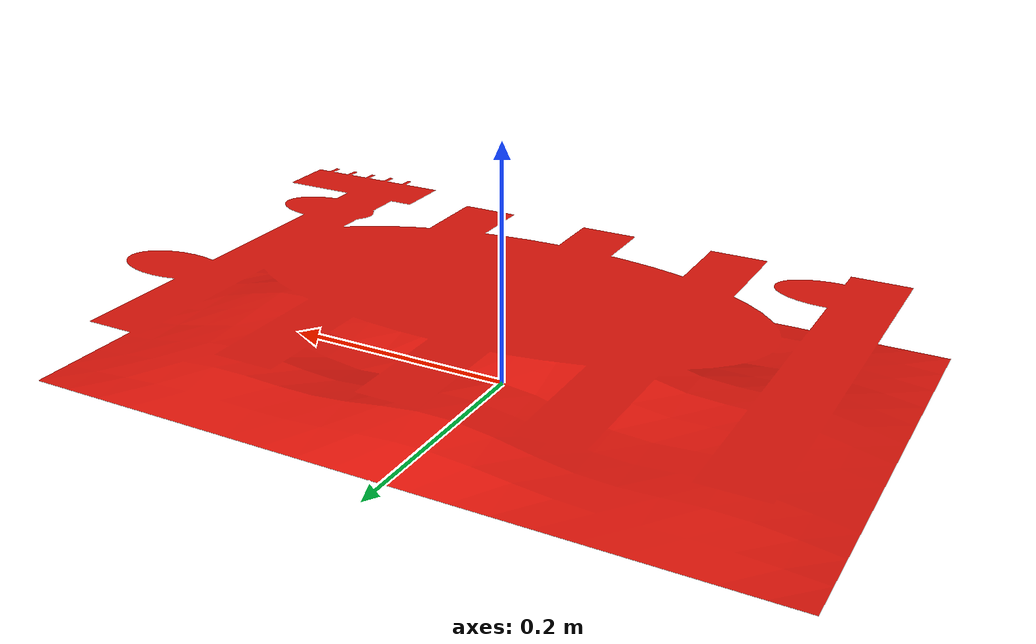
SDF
<?xml version="1.0"?>
<sdf version="1.10">
  <model name="paper_packaging">
    <static>true</static>
    <link name="link">
      <visual name="textured_mesh">
        <geometry>
          <mesh><uri>model://paper_packaging/meshes/paper_packaging.dae</uri></mesh>
        </geometry>

        <material>
          <ambient>0.860 0.080 0.040 1.000</ambient>
          <diffuse>0.860 0.080 0.040 1.000</diffuse>
          <specular>0.08 0.08 0.08 1</specular>
        </material>
      </visual>
      <collision name="collision">
        <pose>0 0 0.0400 0 0 0</pose>
        <geometry><box><size>0.620 0.380 0.080</size></box></geometry>
      </collision>
    </link>
  </model>
</sdf>
